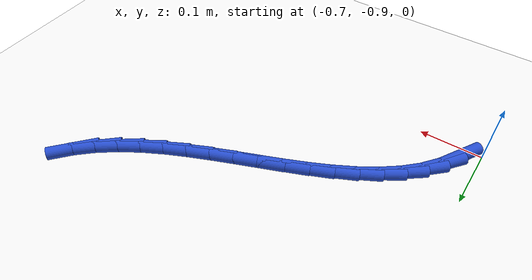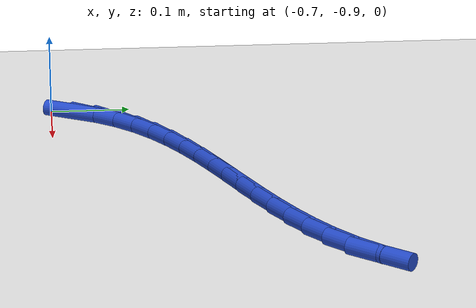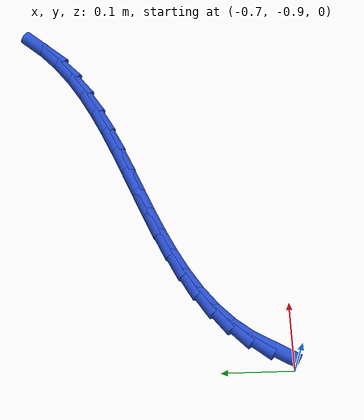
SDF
<sdf version="1.6">
 <world name="default">
  <model name="ground_plane">
   <static>1</static>
   <link name="link">
    <collision name="collision">
     <geometry><plane><normal>0 0 1</normal><size>100 100</size></plane></geometry>
     <surface><friction><ode><mu>100</mu><mu2>50</mu2></ode></friction></surface>
    </collision>
    <visual name="visual">
     <cast_shadows>0</cast_shadows>
     <geometry><plane><normal>0 0 1</normal><size>100 100</size></plane></geometry>
     <material>
      <script><uri>file://media/materials/scripts/gazebo.material</uri><name>Gazebo/WhiteGlow</name></script>
     </material>
    </visual>
   </link>
  </model>
  <model name="line">
   <link name="link_176">
    <pose>-0.669425357987208 -0.8710995989335335 0.01 0 1.57 1.0452365821942302</pose>
    <collision name="collision">
     <geometry><cylinder><radius>0.01</radius><length>0.08</length></cylinder></geometry>
    </collision>
    <visual name="visual">
     <material>
      <script><name>Gazebo/Blue</name><uri>file://media/materials/scripts/gazebo.material</uri></script>
     </material>
     <geometry><cylinder><radius>0.01</radius><length>0.08</length></cylinder></geometry>
    </visual>
   </link>
   <link name="link_177">
    <pose>-0.6530792289257029 -0.8429150560500802 0.01 0 1.57 0.8969169789121322</pose>
    <collision name="collision">
     <geometry><cylinder><radius>0.01</radius><length>0.08</length></cylinder></geometry>
    </collision>
    <visual name="visual">
     <material>
      <script><name>Gazebo/Blue</name><uri>file://media/materials/scripts/gazebo.material</uri></script>
     </material>
     <geometry><cylinder><radius>0.01</radius><length>0.08</length></cylinder></geometry>
    </visual>
   </link>
   <link name="link_178">
    <pose>-0.6329987697489708 -0.8177700999183176 0.01 0 1.57 0.7648286775902349</pose>
    <collision name="collision">
     <geometry><cylinder><radius>0.01</radius><length>0.08</length></cylinder></geometry>
    </collision>
    <visual name="visual">
     <material>
      <script><name>Gazebo/Blue</name><uri>file://media/materials/scripts/gazebo.material</uri></script>
     </material>
     <geometry><cylinder><radius>0.01</radius><length>0.08</length></cylinder></geometry>
    </visual>
   </link>
   <link name="link_179">
    <pose>-0.6095948131532868 -0.7953096829786015 0.01 0 1.57 0.6534139603375374</pose>
    <collision name="collision">
     <geometry><cylinder><radius>0.01</radius><length>0.08</length></cylinder></geometry>
    </collision>
    <visual name="visual">
     <material>
      <script><name>Gazebo/Blue</name><uri>file://media/materials/scripts/gazebo.material</uri></script>
     </material>
     <geometry><cylinder><radius>0.01</radius><length>0.08</length></cylinder></geometry>
    </visual>
   </link>
   <link name="link_180">
    <pose>-0.5832906988891564 -0.7751711120574287 0.01 0 1.57 0.563365617987715</pose>
    <collision name="collision">
     <geometry><cylinder><radius>0.01</radius><length>0.08</length></cylinder></geometry>
    </collision>
    <visual name="visual">
     <material>
      <script><name>Gazebo/Blue</name><uri>file://media/materials/scripts/gazebo.material</uri></script>
     </material>
     <geometry><cylinder><radius>0.01</radius><length>0.08</length></cylinder></geometry>
    </visual>
   </link>
   <link name="link_181">
    <pose>-0.5545097667070845 -0.7569916939812958 0.01 0 1.57 0.49343372928266416</pose>
    <collision name="collision">
     <geometry><cylinder><radius>0.01</radius><length>0.08</length></cylinder></geometry>
    </collision>
    <visual name="visual">
     <material>
      <script><name>Gazebo/Blue</name><uri>file://media/materials/scripts/gazebo.material</uri></script>
     </material>
     <geometry><cylinder><radius>0.01</radius><length>0.08</length></cylinder></geometry>
    </visual>
   </link>
   <link name="link_182">
    <pose>-0.5236753563575762 -0.7404087355766985 0.01 0 1.57 0.44165062708519637</pose>
    <collision name="collision">
     <geometry><cylinder><radius>0.01</radius><length>0.08</length></cylinder></geometry>
    </collision>
    <visual name="visual">
     <material>
      <script><name>Gazebo/Blue</name><uri>file://media/materials/scripts/gazebo.material</uri></script>
     </material>
     <geometry><cylinder><radius>0.01</radius><length>0.08</length></cylinder></geometry>
    </visual>
   </link>
   <link name="link_183">
    <pose>-0.4912108075911361 -0.7250595436701334 0.01 0 1.57 0.40608400174791215</pose>
    <collision name="collision">
     <geometry><cylinder><radius>0.01</radius><length>0.08</length></cylinder></geometry>
    </collision>
    <visual name="visual">
     <material>
      <script><name>Gazebo/Blue</name><uri>file://media/materials/scripts/gazebo.material</uri></script>
     </material>
     <geometry><cylinder><radius>0.01</radius><length>0.08</length></cylinder></geometry>
    </visual>
   </link>
   <link name="link_184">
    <pose>-0.45753946015827046 -0.7105814250880971 0.01 0 1.57 0.38519673281116024</pose>
    <collision name="collision">
     <geometry><cylinder><radius>0.01</radius><length>0.08</length></cylinder></geometry>
    </collision>
    <visual name="visual">
     <material>
      <script><name>Gazebo/Blue</name><uri>file://media/materials/scripts/gazebo.material</uri></script>
     </material>
     <geometry><cylinder><radius>0.01</radius><length>0.08</length></cylinder></geometry>
    </visual>
   </link>
   <link name="link_185">
    <pose>-0.423084653809484 -0.6966116866570861 0.01 0 1.57 0.3779801735669182</pose>
    <collision name="collision">
     <geometry><cylinder><radius>0.01</radius><length>0.08</length></cylinder></geometry>
    </collision>
    <visual name="visual">
     <material>
      <script><name>Gazebo/Blue</name><uri>file://media/materials/scripts/gazebo.material</uri></script>
     </material>
     <geometry><cylinder><radius>0.01</radius><length>0.08</length></cylinder></geometry>
    </visual>
   </link>
   <link name="link_186">
    <pose>-0.38826972829528184 -0.6827876352035965 0.01 0 1.57 0.38398375193764045</pose>
    <collision name="collision">
     <geometry><cylinder><radius>0.01</radius><length>0.08</length></cylinder></geometry>
    </collision>
    <visual name="visual">
     <material>
      <script><name>Gazebo/Blue</name><uri>file://media/materials/scripts/gazebo.material</uri></script>
     </material>
     <geometry><cylinder><radius>0.01</radius><length>0.08</length></cylinder></geometry>
    </visual>
   </link>
   <link name="link_187">
    <pose>-0.353518023366169 -0.6687465775541249 0.01 0 1.57 0.4033052326619897</pose>
    <collision name="collision">
     <geometry><cylinder><radius>0.01</radius><length>0.08</length></cylinder></geometry>
    </collision>
    <visual name="visual">
     <material>
      <script><name>Gazebo/Blue</name><uri>file://media/materials/scripts/gazebo.material</uri></script>
     </material>
     <geometry><cylinder><radius>0.01</radius><length>0.08</length></cylinder></geometry>
    </visual>
   </link>
   <link name="link_188">
    <pose>-0.3192528787726505 -0.6541258205351674 0.01 0 1.57 0.43656238052622204</pose>
    <collision name="collision">
     <geometry><cylinder><radius>0.01</radius><length>0.08</length></cylinder></geometry>
    </collision>
    <visual name="visual">
     <material>
      <script><name>Gazebo/Blue</name><uri>file://media/materials/scripts/gazebo.material</uri></script>
     </material>
     <geometry><cylinder><radius>0.01</radius><length>0.08</length></cylinder></geometry>
    </visual>
   </link>
   <link name="link_189">
    <pose>-0.28589763426523096 -0.6385626709732202 0.01 0 1.57 0.48483364054583444</pose>
    <collision name="collision">
     <geometry><cylinder><radius>0.01</radius><length>0.08</length></cylinder></geometry>
    </collision>
    <visual name="visual">
     <material>
      <script><name>Gazebo/Blue</name><uri>file://media/materials/scripts/gazebo.material</uri></script>
     </material>
     <geometry><cylinder><radius>0.01</radius><length>0.08</length></cylinder></geometry>
    </visual>
   </link>
   <link name="link_190">
    <pose>-0.253875629594417 -0.6216944356947806 0.01 0 1.57 0.5495225617542846</pose>
    <collision name="collision">
     <geometry><cylinder><radius>0.01</radius><length>0.08</length></cylinder></geometry>
    </collision>
    <visual name="visual">
     <material>
      <script><name>Gazebo/Blue</name><uri>file://media/materials/scripts/gazebo.material</uri></script>
     </material>
     <geometry><cylinder><radius>0.01</radius><length>0.08</length></cylinder></geometry>
    </visual>
   </link>
   <link name="link_191">
    <pose>-0.2236102045107129 -0.6031584215263442 0.01 0 1.57 0.6320642633892759</pose>
    <collision name="collision">
     <geometry><cylinder><radius>0.01</radius><length>0.08</length></cylinder></geometry>
    </collision>
    <visual name="visual">
     <material>
      <script><name>Gazebo/Blue</name><uri>file://media/materials/scripts/gazebo.material</uri></script>
     </material>
     <geometry><cylinder><radius>0.01</radius><length>0.08</length></cylinder></geometry>
    </visual>
   </link>
   <link name="link_192">
    <pose>-0.19552469876462383 -0.5825919352944077 0.01 0 1.57 0.7333533358610547</pose>
    <collision name="collision">
     <geometry><cylinder><radius>0.01</radius><length>0.08</length></cylinder></geometry>
    </collision>
    <visual name="visual">
     <material>
      <script><name>Gazebo/Blue</name><uri>file://media/materials/scripts/gazebo.material</uri></script>
     </material>
     <geometry><cylinder><radius>0.01</radius><length>0.08</length></cylinder></geometry>
    </visual>
   </link>
   <link name="link_193">
    <pose>-0.17004203774525434 -0.5596327030410941 0.01 0 1.57 0.8456402453938454</pose>
    <collision name="collision">
     <geometry><cylinder><radius>0.01</radius><length>0.08</length></cylinder></geometry>
    </collision>
    <visual name="visual">
     <material>
      <script><name>Gazebo/Blue</name><uri>file://media/materials/scripts/gazebo.material</uri></script>
     </material>
     <geometry><cylinder><radius>0.01</radius><length>0.08</length></cylinder></geometry>
    </visual>
   </link>
  </model>
 </world>
</sdf>
